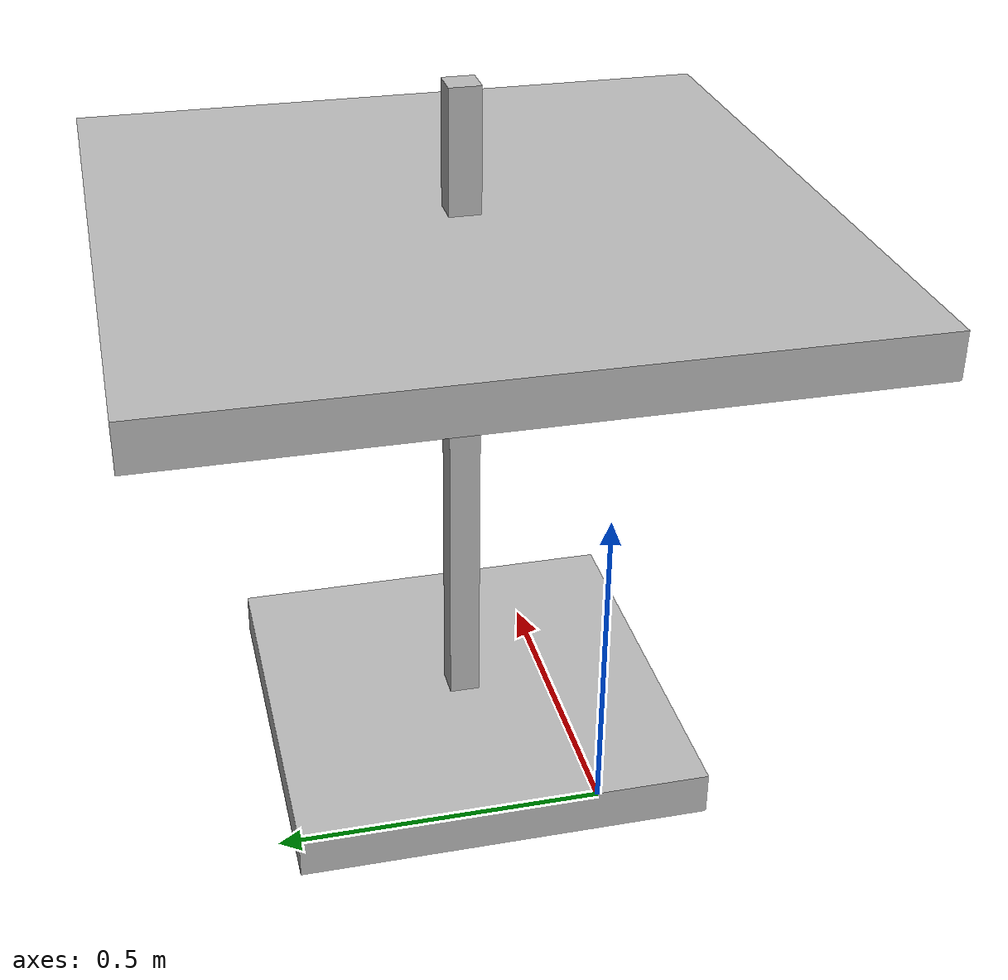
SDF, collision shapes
<?xml version='1.0'?>
<sdf version='1.6'>
  <model name='cafe_table'>
    <link name='link'>
      <pose frame=''>0.002046 0.217771 0.206604 0 -0 0</pose>
      <self_collide>0</self_collide>
      <kinematic>0</kinematic>
      <inertial>
        <inertia>
          <ixx>0</ixx>
          <ixy>0</ixy>
          <ixz>0</ixz>
          <iyy>0</iyy>
          <iyz>0</iyz>
          <izz>0</izz>
        </inertia>
        <mass>0</mass>
        <pose frame=''>0 0 0 0 -0 0</pose>
      </inertial>
      <visual name='visual'>
        <geometry>
          <mesh>
            <uri>model://cafe_table/meshes/cafe_table.dae</uri>
          </mesh>
        </geometry>
        <material>
          <shader type='pixel'/>
        </material>
        <pose frame=''>0 0 0 0 -0 0</pose>
        <cast_shadows>1</cast_shadows>
        <transparency>0</transparency>
      </visual>
      <collision name='column'>
        <laser_retro>0</laser_retro>
        <max_contacts>10</max_contacts>
        <pose frame=''>0 0 0.37 0 -0 0</pose>
        <geometry>
          <box>
            <size>0.042 0.042 1.15918</size>
          </box>
        </geometry>
        <surface>
          <friction>
            <ode>
              <mu>1</mu>
              <mu2>1</mu2>
              <fdir1>0 0 0</fdir1>
              <slip1>0</slip1>
              <slip2>0</slip2>
            </ode>
            <torsional>
              <coefficient>1</coefficient>
              <patch_radius>0</patch_radius>
              <surface_radius>0</surface_radius>
              <use_patch_radius>1</use_patch_radius>
              <ode>
                <slip>0</slip>
              </ode>
            </torsional>
          </friction>
          <bounce>
            <restitution_coefficient>0</restitution_coefficient>
            <threshold>1e+06</threshold>
          </bounce>
          <contact>
            <collide_without_contact>0</collide_without_contact>
            <collide_without_contact_bitmask>1</collide_without_contact_bitmask>
            <collide_bitmask>1</collide_bitmask>
            <ode>
              <soft_cfm>0</soft_cfm>
              <soft_erp>0.2</soft_erp>
              <kp>1e+13</kp>
              <kd>1</kd>
              <max_vel>0.01</max_vel>
              <min_depth>0</min_depth>
            </ode>
            <bullet>
              <split_impulse>1</split_impulse>
              <split_impulse_penetration_threshold>-0.01</split_impulse_penetration_threshold>
              <soft_cfm>0</soft_cfm>
              <soft_erp>0.2</soft_erp>
              <kp>1e+13</kp>
              <kd>1</kd>
            </bullet>
          </contact>
        </surface>
      </collision>
      <collision name='base'>
        <laser_retro>0</laser_retro>
        <max_contacts>10</max_contacts>
        <pose frame=''>0 0 0.02 0 -0 0</pose>
        <geometry>
          <box>
            <size>0.56 0.56 0.060815</size>
          </box>
        </geometry>
        <surface>
          <friction>
            <ode>
              <mu>1</mu>
              <mu2>1</mu2>
              <fdir1>0 0 0</fdir1>
              <slip1>0</slip1>
              <slip2>0</slip2>
            </ode>
            <torsional>
              <coefficient>1</coefficient>
              <patch_radius>0</patch_radius>
              <surface_radius>0</surface_radius>
              <use_patch_radius>1</use_patch_radius>
              <ode>
                <slip>0</slip>
              </ode>
            </torsional>
          </friction>
          <bounce>
            <restitution_coefficient>0</restitution_coefficient>
            <threshold>1e+06</threshold>
          </bounce>
          <contact>
            <collide_without_contact>0</collide_without_contact>
            <collide_without_contact_bitmask>1</collide_without_contact_bitmask>
            <collide_bitmask>1</collide_bitmask>
            <ode>
              <soft_cfm>0</soft_cfm>
              <soft_erp>0.2</soft_erp>
              <kp>1e+13</kp>
              <kd>1</kd>
              <max_vel>0.01</max_vel>
              <min_depth>0</min_depth>
            </ode>
            <bullet>
              <split_impulse>1</split_impulse>
              <split_impulse_penetration_threshold>-0.01</split_impulse_penetration_threshold>
              <soft_cfm>0</soft_cfm>
              <soft_erp>0.2</soft_erp>
              <kp>1e+13</kp>
              <kd>1</kd>
            </bullet>
          </contact>
        </surface>
      </collision>
      <collision name='surface'>
        <laser_retro>0</laser_retro>
        <max_contacts>10</max_contacts>
        <pose frame=''>0 0 0.755 0 -0 0</pose>
        <geometry>
          <box>
            <size>0.913 0.913 0.060815</size>
          </box>
        </geometry>
        <surface>
          <friction>
            <ode>
              <mu>1</mu>
              <mu2>1</mu2>
              <fdir1>0 0 0</fdir1>
              <slip1>0</slip1>
              <slip2>0</slip2>
            </ode>
            <torsional>
              <coefficient>1</coefficient>
              <patch_radius>0</patch_radius>
              <surface_radius>0</surface_radius>
              <use_patch_radius>1</use_patch_radius>
              <ode>
                <slip>0</slip>
              </ode>
            </torsional>
          </friction>
          <bounce>
            <restitution_coefficient>0</restitution_coefficient>
            <threshold>1e+06</threshold>
          </bounce>
          <contact>
            <collide_without_contact>0</collide_without_contact>
            <collide_without_contact_bitmask>1</collide_without_contact_bitmask>
            <collide_bitmask>1</collide_bitmask>
            <ode>
              <soft_cfm>0</soft_cfm>
              <soft_erp>0.2</soft_erp>
              <kp>1e+13</kp>
              <kd>1</kd>
              <max_vel>0.01</max_vel>
              <min_depth>0</min_depth>
            </ode>
            <bullet>
              <split_impulse>1</split_impulse>
              <split_impulse_penetration_threshold>-0.01</split_impulse_penetration_threshold>
              <soft_cfm>0</soft_cfm>
              <soft_erp>0.2</soft_erp>
              <kp>1e+13</kp>
              <kd>1</kd>
            </bullet>
          </contact>
        </surface>
      </collision>
    </link>
    <static>1</static>
    <allow_auto_disable>1</allow_auto_disable>
  </model>
</sdf>
